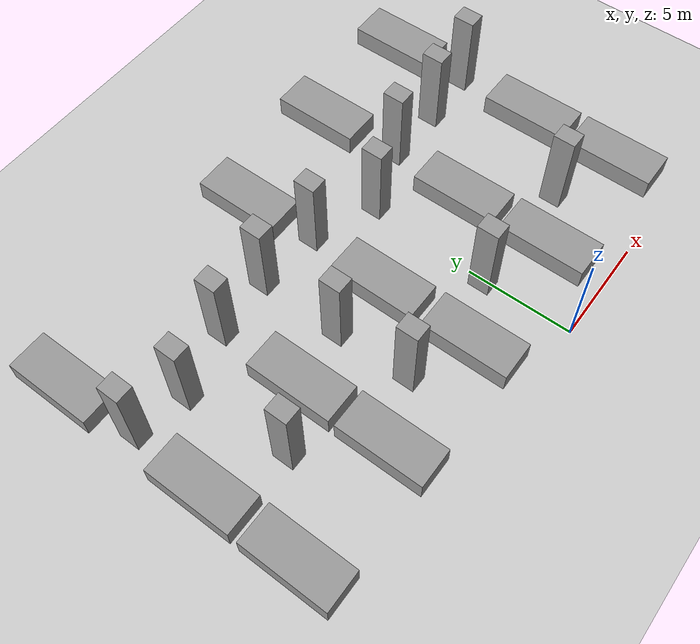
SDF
<sdf version="1.7">
 <world name="default">
  <model name="ground_plane">
   <static>1</static>
   <link name="link">
    <collision name="collision">
     <geometry><plane><normal>0 0 1</normal><size>100 100</size></plane></geometry>
     <surface>
      <contact><collide_bitmask>65535</collide_bitmask></contact>
      <friction><ode><mu>100</mu><mu2>50</mu2></ode></friction>
     </surface>
    </collision>
    <visual name="visual">
     <geometry><plane><normal>0 0 1</normal><size>100 100</size></plane></geometry>
     <material>
      <script><uri>file://media/materials/scripts/gazebo.material</uri><name>Gazebo/Grey</name></script>
     </material>
    </visual>
   </link>
  </model>
  <model name="unit_box_clone_clone_2">
   <pose>8.98237 2.93253 0.499996 0 -5e-06 -0.001041</pose>
   <link name="link">
    <inertial>
     <mass>1</mass>
     <inertia>
      <ixx>0.166667</ixx>
      <ixy>0</ixy>
      <ixz>0</ixz>
      <iyy>0.166667</iyy>
      <iyz>0</iyz>
      <izz>0.166667</izz>
     </inertia>
    </inertial>
    <collision name="collision"><geometry><box><size>1.85096 4.12993 1</size></box></geometry></collision>
    <visual name="visual">
     <geometry><box><size>1.85096 4.12993 1</size></box></geometry>
     <material>
      <script><name>Gazebo/Grey</name><uri>file://media/materials/scripts/gazebo.material</uri></script>
     </material>
    </visual>
   </link>
  </model>
  <model name="unit_box_clone_clone_4">
   <pose>8.98224 7.41455 0.5 0 -1e-06 -0.001076</pose>
   <link name="link">
    <inertial>
     <mass>1</mass>
     <inertia>
      <ixx>0.166667</ixx>
      <ixy>0</ixy>
      <ixz>0</ixz>
      <iyy>0.166667</iyy>
      <iyz>0</iyz>
      <izz>0.166667</izz>
     </inertia>
    </inertial>
    <collision name="collision"><geometry><box><size>1.85096 4.12993 1</size></box></geometry></collision>
    <visual name="visual">
     <geometry><box><size>1.85096 4.12993 1</size></box></geometry>
     <material>
      <script><name>Gazebo/Grey</name><uri>file://media/materials/scripts/gazebo.material</uri></script>
     </material>
    </visual>
   </link>
  </model>
  <model name="unit_box_clone_clone_5">
   <pose>8.98222 15.0009 0.5 0 -1e-06 0.00136</pose>
   <link name="link">
    <inertial>
     <mass>1</mass>
     <inertia>
      <ixx>0.166667</ixx>
      <ixy>0</ixy>
      <ixz>0</ixz>
      <iyy>0.166667</iyy>
      <iyz>0</iyz>
      <izz>0.166667</izz>
     </inertia>
    </inertial>
    <collision name="collision"><geometry><box><size>1.85096 4.12993 1</size></box></geometry></collision>
    <visual name="visual">
     <geometry><box><size>1.85096 4.12993 1</size></box></geometry>
     <material>
      <script><name>Gazebo/Grey</name><uri>file://media/materials/scripts/gazebo.material</uri></script>
     </material>
    </visual>
   </link>
  </model>
  <model name="unit_box_clone_clone_12">
   <pose>3.07998 15.1593 0.499996 0 5e-06 0.000403</pose>
   <link name="link">
    <inertial>
     <mass>1</mass>
     <inertia>
      <ixx>0.166667</ixx>
      <ixy>0</ixy>
      <ixz>0</ixz>
      <iyy>0.166667</iyy>
      <iyz>0</iyz>
      <izz>0.166667</izz>
     </inertia>
    </inertial>
    <collision name="collision"><geometry><box><size>1.85096 4.12993 1</size></box></geometry></collision>
    <visual name="visual">
     <geometry><box><size>1.85096 4.12993 1</size></box></geometry>
     <material>
      <script><name>Gazebo/Grey</name><uri>file://media/materials/scripts/gazebo.material</uri></script>
     </material>
    </visual>
   </link>
  </model>
  <model name="unit_box_clone_clone_13">
   <pose>3.0803 7.42133 0.499996 0 -5e-06 0.000162</pose>
   <link name="link">
    <inertial>
     <mass>1</mass>
     <inertia>
      <ixx>0.166667</ixx>
      <ixy>0</ixy>
      <ixz>0</ixz>
      <iyy>0.166667</iyy>
      <iyz>0</iyz>
      <izz>0.166667</izz>
     </inertia>
    </inertial>
    <collision name="collision"><geometry><box><size>1.85096 4.12993 1</size></box></geometry></collision>
    <visual name="visual">
     <geometry><box><size>1.85096 4.12993 1</size></box></geometry>
     <material>
      <script><name>Gazebo/Grey</name><uri>file://media/materials/scripts/gazebo.material</uri></script>
     </material>
    </visual>
   </link>
  </model>
  <model name="unit_box_clone_clone_14">
   <pose>3.0803 2.93003 0.5 0 -1e-06 -0.000976</pose>
   <link name="link">
    <inertial>
     <mass>1</mass>
     <inertia>
      <ixx>0.166667</ixx>
      <ixy>0</ixy>
      <ixz>0</ixz>
      <iyy>0.166667</iyy>
      <iyz>0</iyz>
      <izz>0.166667</izz>
     </inertia>
    </inertial>
    <collision name="collision"><geometry><box><size>1.85096 4.12993 1</size></box></geometry></collision>
    <visual name="visual">
     <geometry><box><size>1.85096 4.12993 1</size></box></geometry>
     <material>
      <script><name>Gazebo/Grey</name><uri>file://media/materials/scripts/gazebo.material</uri></script>
     </material>
    </visual>
   </link>
  </model>
  <model name="unit_box_clone_clone_27">
   <pose>-2.934 2.90946 0.5 0 1e-06 0.001432</pose>
   <link name="link">
    <inertial>
     <mass>1</mass>
     <inertia>
      <ixx>0.166667</ixx>
      <ixy>0</ixy>
      <ixz>0</ixz>
      <iyy>0.166667</iyy>
      <iyz>0</iyz>
      <izz>0.166667</izz>
     </inertia>
    </inertial>
    <collision name="collision"><geometry><box><size>1.85096 4.12993 1</size></box></geometry></collision>
    <visual name="visual">
     <geometry><box><size>1.85096 4.12993 1</size></box></geometry>
     <material>
      <script><name>Gazebo/Grey</name><uri>file://media/materials/scripts/gazebo.material</uri></script>
     </material>
    </visual>
   </link>
  </model>
  <model name="unit_box_clone_clone_28">
   <pose>-2.93399 7.51229 0.5 -0 -1e-06 -0.005582</pose>
   <link name="link">
    <inertial>
     <mass>1</mass>
     <inertia>
      <ixx>0.166667</ixx>
      <ixy>0</ixy>
      <ixz>0</ixz>
      <iyy>0.166667</iyy>
      <iyz>0</iyz>
      <izz>0.166667</izz>
     </inertia>
    </inertial>
    <collision name="collision"><geometry><box><size>1.85096 4.12993 1</size></box></geometry></collision>
    <visual name="visual">
     <geometry><box><size>1.85096 4.12993 1</size></box></geometry>
     <material>
      <script><name>Gazebo/Grey</name><uri>file://media/materials/scripts/gazebo.material</uri></script>
     </material>
    </visual>
   </link>
  </model>
  <model name="unit_box_clone_clone_29">
   <pose>-2.93397 14.8688 0.499996 0 -5e-06 0.000452</pose>
   <link name="link">
    <inertial>
     <mass>1</mass>
     <inertia>
      <ixx>0.166667</ixx>
      <ixy>0</ixy>
      <ixz>0</ixz>
      <iyy>0.166667</iyy>
      <iyz>0</iyz>
      <izz>0.166667</izz>
     </inertia>
    </inertial>
    <collision name="collision"><geometry><box><size>1.85096 4.12993 1</size></box></geometry></collision>
    <visual name="visual">
     <geometry><box><size>1.85096 4.12993 1</size></box></geometry>
     <material>
      <script><name>Gazebo/Grey</name><uri>file://media/materials/scripts/gazebo.material</uri></script>
     </material>
    </visual>
   </link>
  </model>
  <model name="unit_box_clone_clone_39">
   <pose>-8.58 3.00347 0.499996 0 5e-06 0.000267</pose>
   <link name="link">
    <inertial>
     <mass>1</mass>
     <inertia>
      <ixx>0.166667</ixx>
      <ixy>0</ixy>
      <ixz>0</ixz>
      <iyy>0.166667</iyy>
      <iyz>0</iyz>
      <izz>0.166667</izz>
     </inertia>
    </inertial>
    <collision name="collision"><geometry><box><size>1.85096 4.12993 1</size></box></geometry></collision>
    <visual name="visual">
     <geometry><box><size>1.85096 4.12993 1</size></box></geometry>
     <material>
      <script><name>Gazebo/Grey</name><uri>file://media/materials/scripts/gazebo.material</uri></script>
     </material>
    </visual>
   </link>
  </model>
  <model name="unit_box_clone_clone_40">
   <pose>-8.57999 7.40229 0.5 0 -1e-06 -0.000532</pose>
   <link name="link">
    <inertial>
     <mass>1</mass>
     <inertia>
      <ixx>0.166667</ixx>
      <ixy>0</ixy>
      <ixz>0</ixz>
      <iyy>0.166667</iyy>
      <iyz>0</iyz>
      <izz>0.166667</izz>
     </inertia>
    </inertial>
    <collision name="collision"><geometry><box><size>1.85096 4.12993 1</size></box></geometry></collision>
    <visual name="visual">
     <geometry><box><size>1.85096 4.12993 1</size></box></geometry>
     <material>
      <script><name>Gazebo/Grey</name><uri>file://media/materials/scripts/gazebo.material</uri></script>
     </material>
    </visual>
   </link>
  </model>
  <model name="unit_box_clone_clone_48">
   <pose>-14.24 14.8894 0.5 -0 -1e-06 0.00137</pose>
   <link name="link">
    <inertial>
     <mass>1</mass>
     <inertia>
      <ixx>0.166667</ixx>
      <ixy>0</ixy>
      <ixz>0</ixz>
      <iyy>0.166667</iyy>
      <iyz>0</iyz>
      <izz>0.166667</izz>
     </inertia>
    </inertial>
    <collision name="collision"><geometry><box><size>1.85096 4.12993 1</size></box></geometry></collision>
    <visual name="visual">
     <geometry><box><size>1.85096 4.12993 1</size></box></geometry>
     <material>
      <script><name>Gazebo/Grey</name><uri>file://media/materials/scripts/gazebo.material</uri></script>
     </material>
    </visual>
   </link>
  </model>
  <model name="unit_box_clone_clone_49">
   <pose>-14.24 7.61228 0.5 -0 -1e-06 0.002439</pose>
   <link name="link">
    <inertial>
     <mass>1</mass>
     <inertia>
      <ixx>0.166667</ixx>
      <ixy>0</ixy>
      <ixz>0</ixz>
      <iyy>0.166667</iyy>
      <iyz>0</iyz>
      <izz>0.166667</izz>
     </inertia>
    </inertial>
    <collision name="collision"><geometry><box><size>1.85096 4.12993 1</size></box></geometry></collision>
    <visual name="visual">
     <geometry><box><size>1.85096 4.12993 1</size></box></geometry>
     <material>
      <script><name>Gazebo/Grey</name><uri>file://media/materials/scripts/gazebo.material</uri></script>
     </material>
    </visual>
   </link>
  </model>
  <model name="unit_box_clone_clone_50">
   <pose>-14.24 3.06089 0.499996 -0 5e-06 -0.00044</pose>
   <link name="link">
    <inertial>
     <mass>1</mass>
     <inertia>
      <ixx>0.166667</ixx>
      <ixy>0</ixy>
      <ixz>0</ixz>
      <iyy>0.166667</iyy>
      <iyz>0</iyz>
      <izz>0.166667</izz>
     </inertia>
    </inertial>
    <collision name="collision"><geometry><box><size>1.85096 4.12993 1</size></box></geometry></collision>
    <visual name="visual">
     <geometry><box><size>1.85096 4.12993 1</size></box></geometry>
     <material>
      <script><name>Gazebo/Grey</name><uri>file://media/materials/scripts/gazebo.material</uri></script>
     </material>
    </visual>
   </link>
  </model>
  <model name="warehouse_pillar_3">
   <pose>5.6 4.17252 2.2 0 -0 0.00112</pose>
   <link name="link">
    <inertial>
     <mass>1</mass>
     <inertia>
      <ixx>0.166667</ixx>
      <ixy>0</ixy>
      <ixz>0</ixz>
      <iyy>0.166667</iyy>
      <iyz>0</iyz>
      <izz>0.166667</izz>
     </inertia>
    </inertial>
    <collision name="collision"><geometry><box><size>0.803786 1 4.26698</size></box></geometry></collision>
    <visual name="visual">
     <geometry><box><size>0.803786 1 4.26698</size></box></geometry>
     <material>
      <script><name>Gazebo/Grey</name><uri>file://media/materials/scripts/gazebo.material</uri></script>
     </material>
    </visual>
    <gravity>0</gravity>
   </link>
  </model>
  <model name="warehouse_pillar_8">
   <pose>-0.176316 4.23076 2.2 -1e-06 -0 -0.00123</pose>
   <link name="link">
    <inertial>
     <mass>1</mass>
     <inertia>
      <ixx>0.166667</ixx>
      <ixy>0</ixy>
      <ixz>0</ixz>
      <iyy>0.166667</iyy>
      <iyz>0</iyz>
      <izz>0.166667</izz>
     </inertia>
    </inertial>
    <collision name="collision"><geometry><box><size>0.803786 1 4.26698</size></box></geometry></collision>
    <visual name="visual">
     <geometry><box><size>0.803786 1 4.26698</size></box></geometry>
     <material>
      <script><name>Gazebo/Grey</name><uri>file://media/materials/scripts/gazebo.material</uri></script>
     </material>
    </visual>
    <gravity>0</gravity>
   </link>
  </model>
  <model name="warehouse_pillar_14">
   <pose>-5.77487 11.6967 2.2 -1e-06 -0 -0.001234</pose>
   <link name="link">
    <inertial>
     <mass>1</mass>
     <inertia>
      <ixx>0.166667</ixx>
      <ixy>0</ixy>
      <ixz>0</ixz>
      <iyy>0.166667</iyy>
      <iyz>0</iyz>
      <izz>0.166667</izz>
     </inertia>
    </inertial>
    <collision name="collision"><geometry><box><size>0.803786 1 4.26698</size></box></geometry></collision>
    <visual name="visual">
     <geometry><box><size>0.803786 1 4.26698</size></box></geometry>
     <material>
      <script><name>Gazebo/Grey</name><uri>file://media/materials/scripts/gazebo.material</uri></script>
     </material>
    </visual>
    <gravity>0</gravity>
   </link>
  </model>
  <model name="warehouse_pillar_13">
   <pose>-5.75221 4.17001 2.2 0 0 -0.001233</pose>
   <link name="link">
    <inertial>
     <mass>1</mass>
     <inertia>
      <ixx>0.166667</ixx>
      <ixy>0</ixy>
      <ixz>0</ixz>
      <iyy>0.166667</iyy>
      <iyz>0</iyz>
      <izz>0.166667</izz>
     </inertia>
    </inertial>
    <collision name="collision"><geometry><box><size>0.803786 1 4.26698</size></box></geometry></collision>
    <visual name="visual">
     <geometry><box><size>0.803786 1 4.26698</size></box></geometry>
     <material>
      <script><name>Gazebo/Grey</name><uri>file://media/materials/scripts/gazebo.material</uri></script>
     </material>
    </visual>
    <gravity>0</gravity>
   </link>
  </model>
  <model name="warehouse_pillar_18">
   <pose>-11.1848 5.96285 2.2 -1e-06 -0 -0.000598</pose>
   <link name="link">
    <inertial>
     <mass>1</mass>
     <inertia>
      <ixx>0.166667</ixx>
      <ixy>0</ixy>
      <ixz>0</ixz>
      <iyy>0.166667</iyy>
      <iyz>0</iyz>
      <izz>0.166667</izz>
     </inertia>
    </inertial>
    <collision name="collision"><geometry><box><size>0.803786 1 4.26698</size></box></geometry></collision>
    <visual name="visual">
     <geometry><box><size>0.803786 1 4.26698</size></box></geometry>
     <material>
      <script><name>Gazebo/Grey</name><uri>file://media/materials/scripts/gazebo.material</uri></script>
     </material>
    </visual>
    <gravity>0</gravity>
   </link>
  </model>
  <model name="warehouse_pillar_15_clone_4">
   <pose>0.266234 10.2128 2.2 0 0 -0.000724</pose>
   <link name="link">
    <inertial>
     <mass>1</mass>
     <inertia>
      <ixx>0.166667</ixx>
      <ixy>0</ixy>
      <ixz>0</ixz>
      <iyy>0.166667</iyy>
      <iyz>0</iyz>
      <izz>0.166667</izz>
     </inertia>
    </inertial>
    <collision name="collision"><geometry><box><size>0.803786 1 4.26698</size></box></geometry></collision>
    <visual name="visual">
     <geometry><box><size>0.803786 1 4.26698</size></box></geometry>
     <material>
      <script><name>Gazebo/Grey</name><uri>file://media/materials/scripts/gazebo.material</uri></script>
     </material>
    </visual>
    <gravity>0</gravity>
   </link>
  </model>
  <model name="warehouse_pillar_15_clone_16">
   <pose>6.2071 11.2486 2.2 0 0 -0.000724</pose>
   <link name="link">
    <inertial>
     <mass>1</mass>
     <inertia>
      <ixx>0.166667</ixx>
      <ixy>0</ixy>
      <ixz>0</ixz>
      <iyy>0.166667</iyy>
      <iyz>0</iyz>
      <izz>0.166667</izz>
     </inertia>
    </inertial>
    <collision name="collision"><geometry><box><size>0.803786 1 4.26698</size></box></geometry></collision>
    <visual name="visual">
     <geometry><box><size>0.803786 1 4.26698</size></box></geometry>
     <material>
      <script><name>Gazebo/Grey</name><uri>file://media/materials/scripts/gazebo.material</uri></script>
     </material>
    </visual>
    <gravity>0</gravity>
   </link>
  </model>
  <model name="warehouse_pillar_15_clone_19">
   <pose>-11.6878 10.7555 2.2 0 0 -0.000724</pose>
   <link name="link">
    <inertial>
     <mass>1</mass>
     <inertia>
      <ixx>0.166667</ixx>
      <ixy>0</ixy>
      <ixz>0</ixz>
      <iyy>0.166667</iyy>
      <iyz>0</iyz>
      <izz>0.166667</izz>
     </inertia>
    </inertial>
    <collision name="collision"><geometry><box><size>0.803786 1 4.26698</size></box></geometry></collision>
    <visual name="visual">
     <geometry><box><size>0.803786 1 4.26698</size></box></geometry>
     <material>
      <script><name>Gazebo/Grey</name><uri>file://media/materials/scripts/gazebo.material</uri></script>
     </material>
    </visual>
    <gravity>0</gravity>
   </link>
  </model>
  <model name="warehouse_pillar_15_clone_21">
   <pose>-14.1061 11.2609 2.2 0 0 -0.000724</pose>
   <link name="link">
    <inertial>
     <mass>1</mass>
     <inertia>
      <ixx>0.166667</ixx>
      <ixy>0</ixy>
      <ixz>0</ixz>
      <iyy>0.166667</iyy>
      <iyz>0</iyz>
      <izz>0.166667</izz>
     </inertia>
    </inertial>
    <collision name="collision"><geometry><box><size>0.803786 1 4.26698</size></box></geometry></collision>
    <visual name="visual">
     <geometry><box><size>0.803786 1 4.26698</size></box></geometry>
     <material>
      <script><name>Gazebo/Grey</name><uri>file://media/materials/scripts/gazebo.material</uri></script>
     </material>
    </visual>
    <gravity>0</gravity>
   </link>
  </model>
  <model name="warehouse_pillar_15_clone_22">
   <pose>-2.73192 11.4187 2.2 0 0 -0.000724</pose>
   <link name="link">
    <inertial>
     <mass>1</mass>
     <inertia>
      <ixx>0.166667</ixx>
      <ixy>0</ixy>
      <ixz>0</ixz>
      <iyy>0.166667</iyy>
      <iyz>0</iyz>
      <izz>0.166667</izz>
     </inertia>
    </inertial>
    <collision name="collision"><geometry><box><size>0.803786 1 4.26698</size></box></geometry></collision>
    <visual name="visual">
     <geometry><box><size>0.803786 1 4.26698</size></box></geometry>
     <material>
      <script><name>Gazebo/Grey</name><uri>file://media/materials/scripts/gazebo.material</uri></script>
     </material>
    </visual>
    <gravity>0</gravity>
   </link>
  </model>
  <model name="warehouse_pillar_15_clone_24">
   <pose>-5.84521 7.71205 2.2 0 0 -0.000724</pose>
   <link name="link">
    <inertial>
     <mass>1</mass>
     <inertia>
      <ixx>0.166667</ixx>
      <ixy>0</ixy>
      <ixz>0</ixz>
      <iyy>0.166667</iyy>
      <iyz>0</iyz>
      <izz>0.166667</izz>
     </inertia>
    </inertial>
    <collision name="collision"><geometry><box><size>0.803786 1 4.26698</size></box></geometry></collision>
    <visual name="visual">
     <geometry><box><size>0.803786 1 4.26698</size></box></geometry>
     <material>
      <script><name>Gazebo/Grey</name><uri>file://media/materials/scripts/gazebo.material</uri></script>
     </material>
    </visual>
    <gravity>0</gravity>
   </link>
  </model>
  <model name="warehouse_pillar_15_clone_28">
   <pose>8.97421 11.4262 2.2 0 0 -0.000724</pose>
   <link name="link">
    <inertial>
     <mass>1</mass>
     <inertia>
      <ixx>0.166667</ixx>
      <ixy>0</ixy>
      <ixz>0</ixz>
      <iyy>0.166667</iyy>
      <iyz>0</iyz>
      <izz>0.166667</izz>
     </inertia>
    </inertial>
    <collision name="collision"><geometry><box><size>0.803786 1 4.26698</size></box></geometry></collision>
    <visual name="visual">
     <geometry><box><size>0.803786 1 4.26698</size></box></geometry>
     <material>
      <script><name>Gazebo/Grey</name><uri>file://media/materials/scripts/gazebo.material</uri></script>
     </material>
    </visual>
    <gravity>0</gravity>
   </link>
  </model>
  <model name="warehouse_pillar_15_clone_29">
   <pose>-8.65916 11.5163 2.2 0 0 -0.000724</pose>
   <link name="link">
    <inertial>
     <mass>1</mass>
     <inertia>
      <ixx>0.166667</ixx>
      <ixy>0</ixy>
      <ixz>0</ixz>
      <iyy>0.166667</iyy>
      <iyz>0</iyz>
      <izz>0.166667</izz>
     </inertia>
    </inertial>
    <collision name="collision"><geometry><box><size>0.803786 1 4.26698</size></box></geometry></collision>
    <visual name="visual">
     <geometry><box><size>0.803786 1 4.26698</size></box></geometry>
     <material>
      <script><name>Gazebo/Grey</name><uri>file://media/materials/scripts/gazebo.material</uri></script>
     </material>
    </visual>
    <gravity>0</gravity>
   </link>
  </model>
  <model name="warehouse_pillar_0">
   <link name="link">
    <inertial>
     <mass>1</mass>
     <inertia>
      <ixx>0.166667</ixx>
      <ixy>0</ixy>
      <ixz>0</ixz>
      <iyy>0.166667</iyy>
      <iyz>0</iyz>
      <izz>0.166667</izz>
     </inertia>
    </inertial>
    <visual name="visual">
     <geometry><box><size>0.803786 1 4.26698</size></box></geometry>
     <material>
      <script><name>Gazebo/Grey</name><uri>file://media/materials/scripts/gazebo.material</uri></script>
      <shader type="pixel"/>
     </material>
    </visual>
    <collision name="collision">
     <geometry><box><size>0.803786 1 4.26698</size></box></geometry>
     <surface>
      <friction>
       <ode><mu>1</mu><mu2>1</mu2><fdir1>0 0 0</fdir1><slip1>0</slip1><slip2>0</slip2></ode>
       <torsional>
        <coefficient>1</coefficient>
        <patch_radius>0</patch_radius>
        <surface_radius>0</surface_radius>
        <use_patch_radius>1</use_patch_radius>
        <ode><slip>0</slip></ode>
       </torsional>
      </friction>
      <bounce><restitution_coefficient>0</restitution_coefficient><threshold>1e+06</threshold></bounce>
      <contact>
       <collide_without_contact>0</collide_without_contact>
       <collide_without_contact_bitmask>1</collide_without_contact_bitmask>
       <collide_bitmask>1</collide_bitmask>
       <ode>
        <soft_cfm>0</soft_cfm>
        <soft_erp>0.2</soft_erp>
        <kp>1e+13</kp>
        <kd>1</kd>
        <max_vel>0.01</max_vel>
        <min_depth>0</min_depth>
       </ode>
       <bullet>
        <split_impulse>1</split_impulse>
        <split_impulse_penetration_threshold>-0.01</split_impulse_penetration_threshold>
        <soft_cfm>0</soft_cfm>
        <soft_erp>0.2</soft_erp>
        <kp>1e+13</kp>
        <kd>1</kd>
       </bullet>
      </contact>
     </surface>
    </collision>
   </link>
   <static>0</static>
   <pose>3.33133 11.3141 2.13349 1e-06 0 -0.000175</pose>
  </model>
 </world>
</sdf>
